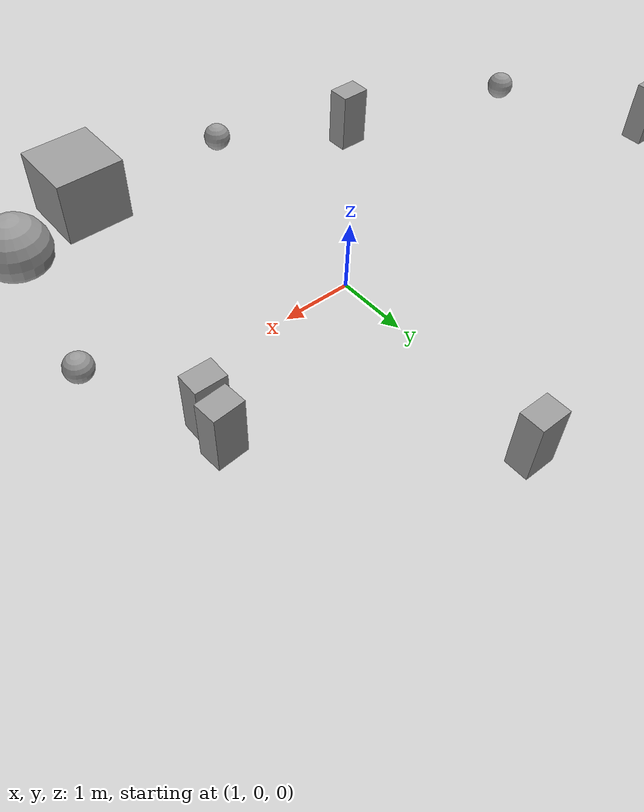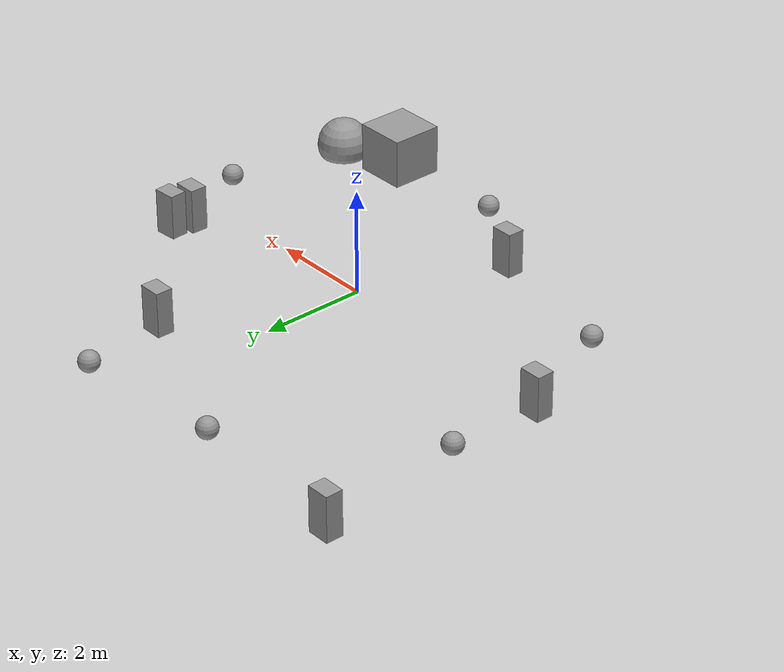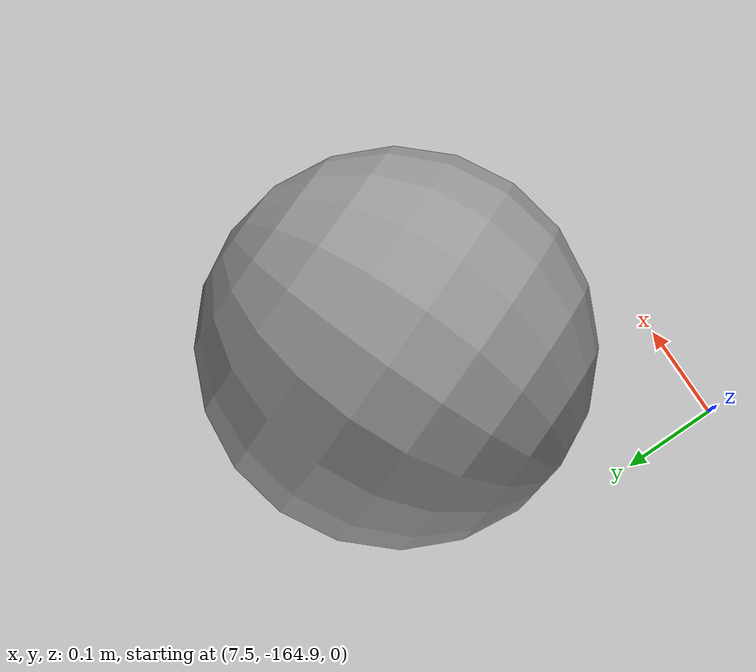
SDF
<sdf version="1.7">
 <world name="default">
  <light name="sun" type="directional">
   <pose>0 0 10 0 -0 0</pose>
   <diffuse>0.8 0.8 0.8 1</diffuse>
   <specular>0.2 0.2 0.2 1</specular>
   <attenuation>
    <range>1000</range>
    <constant>0.9</constant>
    <linear>0.01</linear>
    <quadratic>0.001</quadratic>
   </attenuation>
   <direction>-0.5 0.1 -0.9</direction>
   <spot><inner_angle>0</inner_angle><outer_angle>0</outer_angle><falloff>0</falloff></spot>
  </light>
  <model name="ground_plane">
   <static>1</static>
   <link name="link">
    <collision name="collision">
     <geometry><plane><normal>0 0 1</normal><size>100 100</size></plane></geometry>
     <surface>
      <contact><collide_bitmask>65535</collide_bitmask></contact>
      <friction><ode><mu>100</mu><mu2>50</mu2></ode></friction>
     </surface>
    </collision>
    <visual name="visual">
     <cast_shadows>0</cast_shadows>
     <geometry><plane><normal>0 0 1</normal><size>100 100</size></plane></geometry>
     <material>
      <script><uri>file://media/materials/scripts/gazebo.material</uri><name>Gazebo/Grey</name></script>
     </material>
    </visual>
   </link>
  </model>
  <gravity>0 0 -9.8</gravity>
  <magnetic_field>6e-06 2.3e-05 -4.2e-05</magnetic_field>
  <atmosphere type="adiabatic"/>
  <physics type="ode">
   <max_step_size>0.001</max_step_size>
   <real_time_factor>1</real_time_factor>
   <real_time_update_rate>1000</real_time_update_rate>
  </physics>
  <scene><ambient>0.4 0.4 0.4 1</ambient><background>0.7 0.7 0.7 1</background><shadows>1</shadows></scene>
  <audio><device>default</device></audio>
  <spherical_coordinates>
   <surface_model>EARTH_WGS84</surface_model>
   <latitude_deg>0</latitude_deg>
   <longitude_deg>0</longitude_deg>
   <elevation>0</elevation>
   <heading_deg>0</heading_deg>
  </spherical_coordinates>
  <model name="unit_sphere">
   <pose>4.12578 -3.13483 0.198377 0 -0 0</pose>
   <link name="link">
    <inertial>
     <mass>1</mass>
     <inertia><ixx>0.1</ixx><ixy>0</ixy><ixz>0</ixz><iyy>0.1</iyy><iyz>0</iyz><izz>0.1</izz></inertia>
    </inertial>
    <collision name="collision"><geometry><sphere><radius>0.499999</radius></sphere></geometry></collision>
    <visual name="visual">
     <geometry><sphere><radius>0.499999</radius></sphere></geometry>
     <material>
      <script><name>Gazebo/Grey</name><uri>file://media/materials/scripts/gazebo.material</uri></script>
     </material>
    </visual>
   </link>
  </model>
  <model name="unit_sphere_clone">
   <pose>4.52837 -0.765446 0.198377 0 -0 0</pose>
   <link name="link">
    <inertial>
     <mass>1</mass>
     <inertia><ixx>0.1</ixx><ixy>0</ixy><ixz>0</ixz><iyy>0.1</iyy><iyz>0</iyz><izz>0.1</izz></inertia>
    </inertial>
    <collision name="collision"><geometry><sphere><radius>0.198377</radius></sphere></geometry></collision>
    <visual name="visual">
     <geometry><sphere><radius>0.198377</radius></sphere></geometry>
     <material>
      <script><name>Gazebo/Grey</name><uri>file://media/materials/scripts/gazebo.material</uri></script>
     </material>
    </visual>
   </link>
  </model>
  <model name="unit_sphere_clone_0">
   <pose>7.72553 -164.663 0.198377 1.64166 -0.150749 -1.23408</pose>
   <link name="link">
    <inertial>
     <mass>1</mass>
     <inertia><ixx>0.1</ixx><ixy>0</ixy><ixz>0</ixz><iyy>0.1</iyy><iyz>0</iyz><izz>0.1</izz></inertia>
    </inertial>
    <collision name="collision"><geometry><sphere><radius>0.198377</radius></sphere></geometry></collision>
    <visual name="visual">
     <geometry><sphere><radius>0.198377</radius></sphere></geometry>
     <material>
      <script><name>Gazebo/Grey</name><uri>file://media/materials/scripts/gazebo.material</uri></script>
     </material>
    </visual>
   </link>
  </model>
  <model name="unit_sphere_clone_1">
   <pose>0.52175 -3.58446 0.198377 0 -0 0</pose>
   <link name="link">
    <inertial>
     <mass>1</mass>
     <inertia><ixx>0.1</ixx><ixy>0</ixy><ixz>0</ixz><iyy>0.1</iyy><iyz>0</iyz><izz>0.1</izz></inertia>
    </inertial>
    <collision name="collision"><geometry><sphere><radius>0.198377</radius></sphere></geometry></collision>
    <visual name="visual">
     <geometry><sphere><radius>0.198377</radius></sphere></geometry>
     <material>
      <script><name>Gazebo/Grey</name><uri>file://media/materials/scripts/gazebo.material</uri></script>
     </material>
    </visual>
   </link>
  </model>
  <model name="unit_sphere_clone_2">
   <pose>-3.95028 -1.86908 0.198377 0 -0 0</pose>
   <link name="link">
    <inertial>
     <mass>1</mass>
     <inertia><ixx>0.1</ixx><ixy>0</ixy><ixz>0</ixz><iyy>0.1</iyy><iyz>0</iyz><izz>0.1</izz></inertia>
    </inertial>
    <collision name="collision"><geometry><sphere><radius>0.198377</radius></sphere></geometry></collision>
    <visual name="visual">
     <geometry><sphere><radius>0.198377</radius></sphere></geometry>
     <material>
      <script><name>Gazebo/Grey</name><uri>file://media/materials/scripts/gazebo.material</uri></script>
     </material>
    </visual>
   </link>
  </model>
  <model name="unit_sphere_clone_3">
   <pose>-4.82671 2.07287 0.198377 0 -0 0</pose>
   <link name="link">
    <inertial>
     <mass>1</mass>
     <inertia><ixx>0.1</ixx><ixy>0</ixy><ixz>0</ixz><iyy>0.1</iyy><iyz>0</iyz><izz>0.1</izz></inertia>
    </inertial>
    <collision name="collision"><geometry><sphere><radius>0.198377</radius></sphere></geometry></collision>
    <visual name="visual">
     <geometry><sphere><radius>0.198377</radius></sphere></geometry>
     <material>
      <script><name>Gazebo/Grey</name><uri>file://media/materials/scripts/gazebo.material</uri></script>
     </material>
    </visual>
   </link>
  </model>
  <model name="unit_sphere_clone_4">
   <pose>-1.90409 4.77163 0.198377 0 -0 0</pose>
   <link name="link">
    <inertial>
     <mass>1</mass>
     <inertia><ixx>0.1</ixx><ixy>0</ixy><ixz>0</ixz><iyy>0.1</iyy><iyz>0</iyz><izz>0.1</izz></inertia>
    </inertial>
    <collision name="collision"><geometry><sphere><radius>0.198377</radius></sphere></geometry></collision>
    <visual name="visual">
     <geometry><sphere><radius>0.198377</radius></sphere></geometry>
     <material>
      <script><name>Gazebo/Grey</name><uri>file://media/materials/scripts/gazebo.material</uri></script>
     </material>
    </visual>
   </link>
  </model>
  <model name="unit_sphere_clone_5">
   <pose>0.975774 5.0491 0.198377 0 -0 0</pose>
   <link name="link">
    <inertial>
     <mass>1</mass>
     <inertia><ixx>0.1</ixx><ixy>0</ixy><ixz>0</ixz><iyy>0.1</iyy><iyz>0</iyz><izz>0.1</izz></inertia>
    </inertial>
    <collision name="collision"><geometry><sphere><radius>0.198377</radius></sphere></geometry></collision>
    <visual name="visual">
     <geometry><sphere><radius>0.198377</radius></sphere></geometry>
     <material>
      <script><name>Gazebo/Grey</name><uri>file://media/materials/scripts/gazebo.material</uri></script>
     </material>
    </visual>
   </link>
  </model>
  <model name="unit_box">
   <pose>2.92347 -3.50335 0.431425 0 -0 0.000104</pose>
   <link name="link">
    <inertial>
     <mass>1</mass>
     <inertia>
      <ixx>0.166667</ixx>
      <ixy>0</ixy>
      <ixz>0</ixz>
      <iyy>0.166667</iyy>
      <iyz>0</iyz>
      <izz>0.166667</izz>
     </inertia>
    </inertial>
    <collision name="collision"><geometry><box><size>1 0.999996 1</size></box></geometry></collision>
    <visual name="visual">
     <geometry><box><size>1 0.999996 1</size></box></geometry>
     <material>
      <script><name>Gazebo/Grey</name><uri>file://media/materials/scripts/gazebo.material</uri></script>
     </material>
    </visual>
   </link>
  </model>
  <model name="unit_box_clone">
   <pose>3.82119 1.18391 0.431424 3e-06 4e-06 0.075843</pose>
   <link name="link">
    <inertial>
     <mass>1</mass>
     <inertia>
      <ixx>0.166667</ixx>
      <ixy>0</ixy>
      <ixz>0</ixz>
      <iyy>0.166667</iyy>
      <iyz>0</iyz>
      <izz>0.166667</izz>
     </inertia>
    </inertial>
    <collision name="collision"><geometry><box><size>0.42842 0.323855 0.862851</size></box></geometry></collision>
    <visual name="visual">
     <geometry><box><size>0.42842 0.323855 0.862851</size></box></geometry>
     <material>
      <script><name>Gazebo/Grey</name><uri>file://media/materials/scripts/gazebo.material</uri></script>
     </material>
    </visual>
   </link>
  </model>
  <model name="unit_box_clone_0">
   <pose>1.27388 3.38955 0.431425 0 -0 0.000104</pose>
   <link name="link">
    <inertial>
     <mass>1</mass>
     <inertia>
      <ixx>0.166667</ixx>
      <ixy>0</ixy>
      <ixz>0</ixz>
      <iyy>0.166667</iyy>
      <iyz>0</iyz>
      <izz>0.166667</izz>
     </inertia>
    </inertial>
    <collision name="collision"><geometry><box><size>0.42842 0.323855 0.862851</size></box></geometry></collision>
    <visual name="visual">
     <geometry><box><size>0.42842 0.323855 0.862851</size></box></geometry>
     <material>
      <script><name>Gazebo/Grey</name><uri>file://media/materials/scripts/gazebo.material</uri></script>
     </material>
    </visual>
   </link>
  </model>
  <model name="unit_box_clone_1">
   <pose>-4.85884 0.280632 0.431425 0 -0 0.000104</pose>
   <link name="link">
    <inertial>
     <mass>1</mass>
     <inertia>
      <ixx>0.166667</ixx>
      <ixy>0</ixy>
      <ixz>0</ixz>
      <iyy>0.166667</iyy>
      <iyz>0</iyz>
      <izz>0.166667</izz>
     </inertia>
    </inertial>
    <collision name="collision"><geometry><box><size>0.42842 0.323855 0.862851</size></box></geometry></collision>
    <visual name="visual">
     <geometry><box><size>0.42842 0.323855 0.862851</size></box></geometry>
     <material>
      <script><name>Gazebo/Grey</name><uri>file://media/materials/scripts/gazebo.material</uri></script>
     </material>
    </visual>
   </link>
  </model>
  <model name="unit_box_clone_2">
   <pose>-5.17632 4.9946 0.431425 0 -0 0.000104</pose>
   <link name="link">
    <inertial>
     <mass>1</mass>
     <inertia>
      <ixx>0.166667</ixx>
      <ixy>0</ixy>
      <ixz>0</ixz>
      <iyy>0.166667</iyy>
      <iyz>0</iyz>
      <izz>0.166667</izz>
     </inertia>
    </inertial>
    <collision name="collision"><geometry><box><size>0.42842 0.323855 0.862851</size></box></geometry></collision>
    <visual name="visual">
     <geometry><box><size>0.42842 0.323855 0.862851</size></box></geometry>
     <material>
      <script><name>Gazebo/Grey</name><uri>file://media/materials/scripts/gazebo.material</uri></script>
     </material>
    </visual>
   </link>
  </model>
  <model name="unit_box_clone_3">
   <pose>3.74396 0.770097 0.431425 0 0 -0.005722</pose>
   <link name="link">
    <inertial>
     <mass>1</mass>
     <inertia>
      <ixx>0.166667</ixx>
      <ixy>0</ixy>
      <ixz>0</ixz>
      <iyy>0.166667</iyy>
      <iyz>0</iyz>
      <izz>0.166667</izz>
     </inertia>
    </inertial>
    <collision name="collision"><geometry><box><size>0.42842 0.323855 0.862851</size></box></geometry></collision>
    <visual name="visual">
     <geometry><box><size>0.42842 0.323855 0.862851</size></box></geometry>
     <material>
      <script><name>Gazebo/Grey</name><uri>file://media/materials/scripts/gazebo.material</uri></script>
     </material>
    </visual>
   </link>
  </model>
  <model name="unit_box_clone_4">
   <pose>-1.16576 -2.49099 0.431426 0 -3e-06 0.001793</pose>
   <link name="link">
    <inertial>
     <mass>1</mass>
     <inertia>
      <ixx>0.166667</ixx>
      <ixy>0</ixy>
      <ixz>0</ixz>
      <iyy>0.166667</iyy>
      <iyz>0</iyz>
      <izz>0.166667</izz>
     </inertia>
    </inertial>
    <collision name="collision"><geometry><box><size>0.42842 0.323855 0.862851</size></box></geometry></collision>
    <visual name="visual">
     <geometry><box><size>0.42842 0.323855 0.862851</size></box></geometry>
     <material>
      <script><name>Gazebo/Grey</name><uri>file://media/materials/scripts/gazebo.material</uri></script>
     </material>
    </visual>
   </link>
  </model>
 </world>
</sdf>
